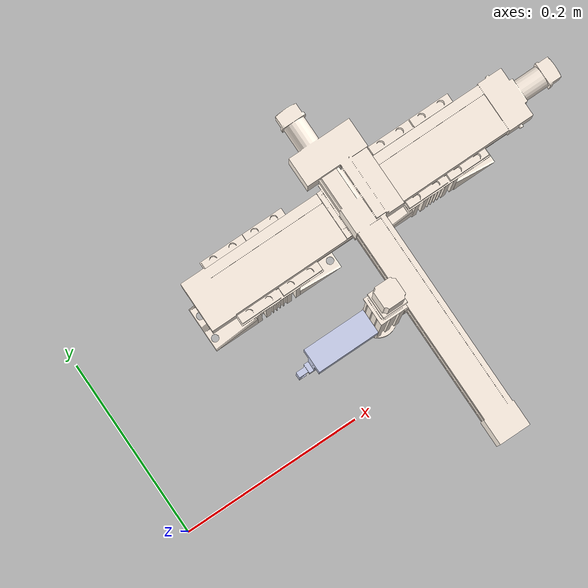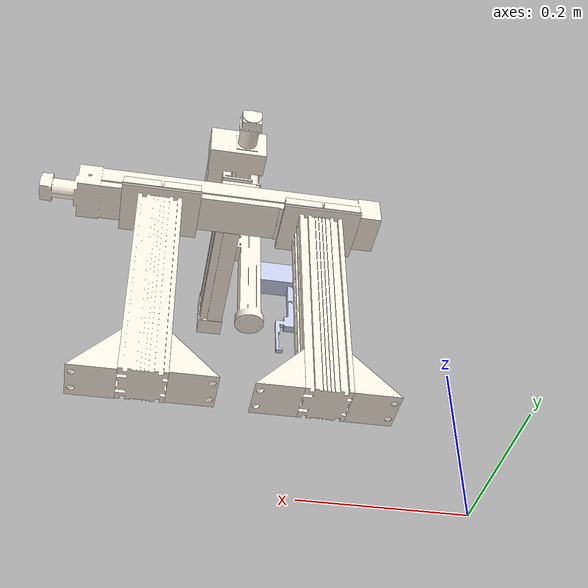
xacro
<?xml version="1.0"?>
<robot xmlns:xacro="http://www.ros.org/wiki/xacro" name="cartesian_robot">
  <!-- Load Simulated or Real Hardware Interfaces -->
  <xacro:arg name="is_sim" default="true" />

  <!-- Include Gazebo Parameters -->
  <xacro:include filename="$(find arm_description)/urdf/arm_gazebo.xacro" />

  <!-- Include ros2_control Plugins -->
  <xacro:include filename="$(find arm_description)/urdf/arm_ros2_control.xacro" />

  <xacro:macro name="default_transmission" params="number">
    <transmission name="transmission${number}">
      <plugin>transmission_interface/SimpleTransmission</plugin>
      <actuator name="motor${number}" role="actuator1" />
      <joint name="joint${number}" type="prismatic" role="joint1">
        <mechanical_reduction>1.0</mechanical_reduction>
      </joint>
    </transmission>
  </xacro:macro>

  <link name="world" />

  <link
    name="base_link">
    <inertial>
      <origin
        xyz="0.29184 0.032677 -0.15851"
        rpy="0 0 0" />
      <mass
        value="0.25637" />
      <inertia
        ixx="9.8383E-05"
        ixy="-1.7674E-09"
        ixz="-1.4664E-07"
        iyy="9.8335E-05"
        iyz="-7.7226E-08"
        izz="8.3997E-05" />
    </inertial>
    <visual>
      <origin
        xyz="0 0 0"
        rpy="0 0 0" />
      <geometry>
        <mesh
          filename="package://arm_description/meshes/base_link.STL" />
      </geometry>
      <material
        name="">
        <color
          rgba="1 0.94902 0.89412 1" />
      </material>
    </visual>
    <collision>
      <origin
        xyz="0 0 0"
        rpy="0 0 0" />
      <geometry>
        <mesh
          filename="package://arm_description/meshes/base_link.STL" />
      </geometry>
    </collision>
  </link>

  <link
    name="additioanal_base_link">
    <inertial>
      <origin
        xyz="0.11761 0.05645 0.024045"
        rpy="0 0 0" />
      <mass
        value="4.4856" />
      <inertia
        ixx="0.027725"
        ixy="3.727E-05"
        ixz="-4.7376E-08"
        iyy="0.0019325"
        iyz="1.6485E-06"
        izz="0.027745" />
    </inertial>
    <visual>
      <origin
        xyz="0 0 0"
        rpy="0 0 0" />
      <geometry>
        <mesh
          filename="package://arm_description/meshes/additioanal_base_link.STL" />
      </geometry>
      <material
        name="">
        <color
          rgba="1 0.94902 0.89412 1" />
      </material>
    </visual>
    <collision>
      <origin
        xyz="0 0 0"
        rpy="0 0 0" />
      <geometry>
        <mesh
          filename="package://arm_description/meshes/additioanal_base_link.STL" />
      </geometry>
    </collision>
  </link>

  <joint name="virtual_joint" type="fixed">
    <parent link="world" />
    <child link="base_link" />
    <origin xyz="0 0 0" rpy="0 0 0" />
  </joint>

  <joint
    name="joint1"
    type="fixed">
    <origin
      xyz="0.1741 0.18232 0.095474"
      rpy="1.5708 0.0036853 0" />
    <parent
      link="base_link" />
    <child
      link="additioanal_base_link" />
    <axis
      xyz="0 0 0" />
  </joint>

  <link
    name="x_rail_Link">
    <inertial>
      <origin
        xyz="0.40747 -0.014382 -0.0037531"
        rpy="0 0 0" />
      <mass
        value="2.0718" />
      <inertia
        ixx="0.00057526"
        ixy="3.4537E-07"
        ixz="4.3606E-08"
        iyy="0.02035"
        iyz="-1.5331E-10"
        izz="0.020084" />
    </inertial>
    <visual>
      <origin
        xyz="0 0 0"
        rpy="0 0 0" />
      <geometry>
        <mesh
          filename="package://arm_description/meshes/x_rail_Link.STL" />
      </geometry>
      <material
        name="">
        <color
          rgba="1 0.94902 0.89412 1" />
      </material>
    </visual>
    <collision>
      <origin
        xyz="0 0 0"
        rpy="0 0 0" />
      <geometry>
        <mesh
          filename="package://arm_description/meshes/x_rail_Link.STL" />
      </geometry>
    </collision>
  </link>

  <joint
    name="joint2"
    type="fixed">
    <origin
      xyz="-0.27738 0.17813 0.021237"
      rpy="3.1416 0 0" />
    <parent
      link="additioanal_base_link" />
    <child
      link="x_rail_Link" />
    <axis
      xyz="0 0 0" />
  </joint>

  <link
    name="x_Link">
    <inertial>
      <origin
        xyz="0.4338 -0.0037341 -0.028595"
        rpy="0 0 0" />
      <mass
        value="1.6493" />
      <inertia
        ixx="0.0004869"
        ixy="1.3349E-06"
        ixz="2.5093E-05"
        iyy="0.0081592"
        iyz="3.3416E-06"
        izz="0.0083426" />
    </inertial>
    <visual>
      <origin
        xyz="0 0 0"
        rpy="0 0 0" />
      <geometry>
        <mesh
          filename="package://arm_description/meshes/x_Link.STL" />
      </geometry>
      <material
        name="">
        <color
          rgba="1 0.94902 0.89412 1" />
      </material>
    </visual>
    <collision>
      <origin
        xyz="0 0 0"
        rpy="0 0 0" />
      <geometry>
        <mesh
          filename="package://arm_description/meshes/x_Link.STL" />
      </geometry>
    </collision>
  </link>

  <joint
    name="joint3"
    type="prismatic">
    <origin
      xyz="0.37179 -0.067263 0.32241"
      rpy="0 1.5708 3.1416" />
    <parent
      link="x_rail_Link" />
    <child
      link="x_Link" />
    <axis
      xyz="0 0 1" />
    <limit
      lower="-0.125"
      upper="0.120"
      effort="1000.0"
      velocity="0.1" />
  </joint>

  <link
    name="y_Link">
    <inertial>
      <origin
        xyz="0.02158 0.025607 -0.012113"
        rpy="0 0 0" />
      <mass
        value="0.57113" />
      <inertia
        ixx="0.0017342"
        ixy="-6.3684E-07"
        ixz="1.5847E-07"
        iyy="5.4819E-05"
        iyz="-1.0238E-06"
        izz="0.0017323" />
    </inertial>
    <visual>
      <origin
        xyz="0 0 0"
        rpy="0 0 0" />
      <geometry>
        <mesh
          filename="package://arm_description/meshes/y_Link.STL" />
      </geometry>
      <material
        name="">
        <color
          rgba="1 0.94902 0.89412 1" />
      </material>
    </visual>
    <collision>
      <origin
        xyz="0 0 0"
        rpy="0 0 0" />
      <geometry>
        <mesh
          filename="package://arm_description/meshes/y_Link.STL" />
      </geometry>
    </collision>
  </link>

  <joint
    name="joint4"
    type="prismatic">
    <origin
      xyz="0.40246 0.019644 -0.0080109"
      rpy="3.1416 0 0" />
    <parent
      link="x_Link" />
    <child
      link="y_Link" />
    <axis
      xyz="1 0 0" />
    <limit
      lower="-0.051"
      upper="0.118"
      effort="1000.0"
      velocity="0.1" />
  </joint>

  <link
    name="z_Link">
    <inertial>
      <origin
        xyz="-0.032527 0.012162 0.0075268"
        rpy="0 0 0" />
      <mass
        value="0.071692" />
      <inertia
        ixx="2.3649E-05"
        ixy="-4.7082E-10"
        ixz="2.0327E-08"
        iyy="3.6289E-05"
        iyz="1.6593E-09"
        izz="1.8063E-05" />
    </inertial>
    <visual>
      <origin
        xyz="0 0 0"
        rpy="0 0 0" />
      <geometry>
        <mesh
          filename="package://arm_description/meshes/z_Link.STL" />
      </geometry>
      <material
        name="">
        <color
          rgba="0.79216 0.81961 0.93333 1" />
      </material>
    </visual>
    <collision>
      <origin
        xyz="0 0 0"
        rpy="0 0 0" />
      <geometry>
        <mesh
          filename="package://arm_description/meshes/z_Link.STL" />
      </geometry>
    </collision>
  </link>

  <joint
    name="joint5"
    type="prismatic">
    <origin
      xyz="0.009476 0.067985 -0.070619"
      rpy="0 0 -1.5708" />
    <parent
      link="y_Link" />
    <child
      link="z_Link" />
    <axis
      xyz="1 0 0" />
    <limit
      lower="-0.054"
      upper="0.115"
      effort="1000.0"
      velocity="0.1" />
  </joint>

  <!-- Transmissions-->
  <xacro:default_transmission number="3" />
  <xacro:default_transmission number="4" />
  <xacro:default_transmission number="5" />

</robot>
